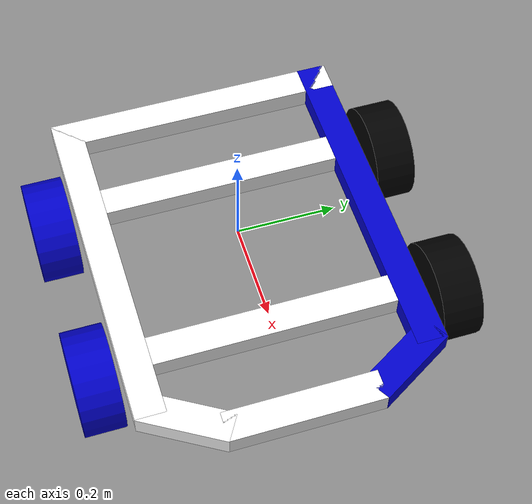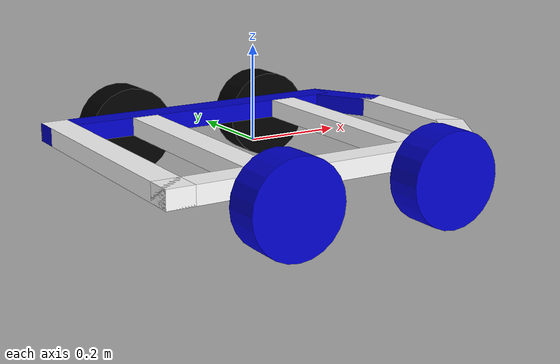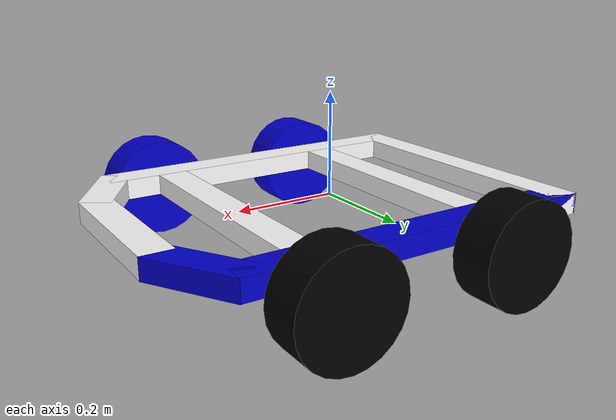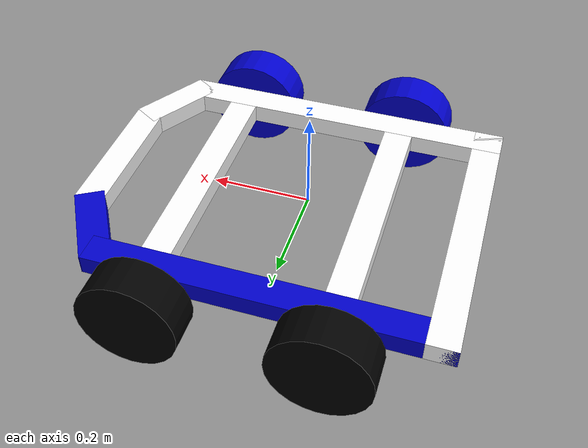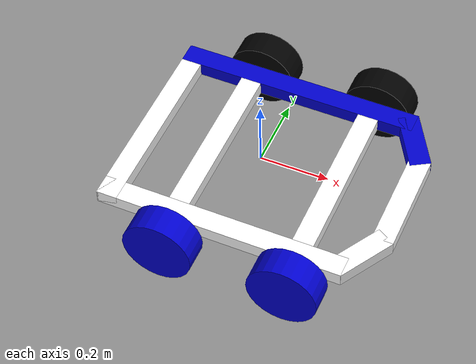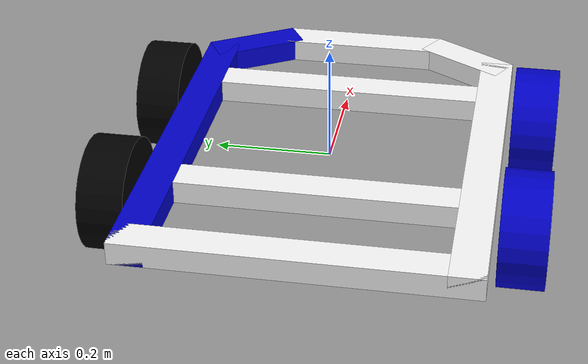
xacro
<?xml version="1.0"?>
<robot xmlns:xacro="http://www.ros.org/wiki/xacro" name="GUELADAN">

<xacro:include filename="inertial_macros.xacro"/>

  <material name="blue">
    <color rgba="0 0 0.8 1"/>
  </material>
  <material name="black">
    <color rgba="0 0 0 1"/>
  </material>
  <material name="white">
    <color rgba="1 1 1 1"/>
  </material>

<link name="base_link"></link>

<joint name="base_join" type="fixed">
    <parent link="base_link"/>
    <child link="chassis_link_back"/>
    <origin rpy="0 0 0" xyz="-0.325 0 0"/>
</joint>

  <link name="chassis_link_back">
    <visual>
      <geometry>
        <box size="0.06 0.6 0.04"/>
      </geometry>
      <origin rpy="0 0 0" xyz="0 0 0"/>
      <material name="white"/>
    </visual>
    <collision>
        <geometry>
            <box size="0.06 0.6 0.04"/>
        </geometry>
        <origin rpy="0 0 0" xyz="0 0 0"/>
    </collision>
    <xacro:inertial_box mass="1.8" x="0.06" y="0.6" z="0.04">
      <origin rpy="0 0 0" xyz="0 0 0"/>
    </xacro:inertial_box>
  </link>

  <joint name="base_link_left_joint" type="fixed">
    <parent link="base_link"/>
    <child link="chassis_link_left"/>
    <origin rpy="0 0 0" xyz="0 -0.27 0"/>
  </joint>

  <joint name="base_link_right_joint" type="fixed">
    <parent link="base_link"/>
    <child link="chassis_link_right"/>
    <origin rpy="0 0 0" xyz="0 0.27 0"/>
  </joint>

  <link name="chassis_link_left">
    <visual>
      <geometry>
        <box size="0.71 0.06 0.04"/>
      </geometry>
      <origin rpy="0 0 0" xyz="0 0 0"/>
      <material name="white"/>
    </visual>

    <collision>
      <geometry>
        <box size="0.71 0.06 0.04"/>
      </geometry>
      <origin rpy="0 0 0" xyz="0 0 0"/>
      <material name="white"/>
    </collision>

    <xacro:inertial_box mass="2.13" x="0.71" y="0.06" z="0.04">
      <origin rpy="0 0 0" xyz="0 0 0"/>
    </xacro:inertial_box>
  </link>

  <link name="chassis_link_right">
    <visual>
      <geometry>
        <box size="0.71 0.06 0.04"/>
      </geometry>
      <origin rpy="0 0 0" xyz="0 0 0"/>
      <material name="blue"/>
    </visual>

    <collision>
      <geometry>
        <box size="0.71 0.06 0.04"/>
      </geometry>
      <origin rpy="0 0 0" xyz="0 0 0"/>
      <material name="blue"/>
    </collision>

    <xacro:inertial_box mass="2.13" x="0.71" y="0.06" z="0.4">
      <origin rpy="0 0 0" xyz="0 0 0"/>
    </xacro:inertial_box>
  </link>

  <joint name="base_link_left_oblic_joint" type="fixed">
    <parent link="base_link"/>
    <child link="chassis_link_left_oblic"/>
    <origin rpy="0 0 -2.11" xyz="0.375 -0.21 0"/>
  </joint>

  <joint name="base_link_right_oblic_joint" type="fixed">
    <parent link="base_link"/>
    <child link="chassis_link_right_oblic"/>
    <origin rpy="0 0 2.11" xyz="0.375 0.21 0"/>
  </joint>

  <joint name="base_link_front_joint" type="fixed">
    <parent link="base_link"/>
    <child link="chassis_link_front"/>
    <origin rpy="0 0 0" xyz="0.415 0 0"/>
  </joint>

  <joint name="chassis_link_2_joint" type="fixed">
    <parent link="base_link"/>
    <child link="chassis_link_2"/>
    <origin rpy="0 0 0" xyz="0.2254 0 0"/>
  </joint>

  <joint name="chassis_link_1_joint" type="fixed">
    <parent link="base_link"/>
    <child link="chassis_link_1"/>
    <origin rpy="0 0 0" xyz="-0.1346 0 0"/>
  </joint>

  <link name="chassis_link_right_oblic">
    <visual>
      <geometry>
        <box size="0.175 0.06 0.04"/>
      </geometry>
      <origin rpy="0 0 0" xyz="0 0 0"/>
      <material name="blue"/>
    </visual>

    <collision>
      <geometry>
        <box size="0.175 0.06 0.04"/>
      </geometry>
      <origin rpy="0 0 0" xyz="0 0 0"/>
      <material name="blue"/>
    </collision>

    <xacro:inertial_box mass="0.525" x="0.175" y="0.06" z="0.04">
      <origin rpy="0 0 0" xyz="0 0 0"/>
    </xacro:inertial_box>
  </link>

  <link name="chassis_link_left_oblic">
    <visual>
      <geometry>
        <box size="0.175 0.06 0.04"/>
      </geometry>
      <origin rpy="0 0 0" xyz="0 0 0"/>
      <material name="white"/>
    </visual>

    <collision>
      <geometry>
        <box size="0.175 0.06 0.04"/>
      </geometry>
      <origin rpy="0 0 0" xyz="0 0 0"/>
      <material name="white"/>
    </collision>

    <xacro:inertial_box mass="0.525" x="0.175" y="0.06" z="0.4">
      <origin rpy="0 0 0" xyz="0 0 0"/>
    </xacro:inertial_box>
  </link>

  <link name="chassis_link_front">
    <visual>
      <geometry>
        <box size="0.06 0.3 0.04"/>
      </geometry>
      <origin rpy="0 0 0" xyz="0 0 0"/>
      <material name="white"/>
    </visual>

    <collision>
      <geometry>
        <box size="0.06 0.3 0.04"/>
      </geometry>
      <origin rpy="0 0 0" xyz="0 0 0"/>
      <material name="white"/>
    </collision>

    <xacro:inertial_box mass="0.9" x="0.06" y="0.3" z="0.04">
      <origin rpy="0 0 0" xyz="0 0 0"/>
    </xacro:inertial_box>
  </link>

  <link name="chassis_link_1">
    <visual>
      <geometry>
        <box size="0.06 0.48 0.04"/>
      </geometry>
      <origin rpy="0 0 0" xyz="0 0 0"/>
      <material name="white"/>
    </visual>

    <collision>
      <geometry>
        <box size="0.06 0.48 0.04"/>
      </geometry>
      <origin rpy="0 0 0" xyz="0 0 0"/>
      <material name="white"/>
    </collision>

     <xacro:inertial_box mass="0.9" x="0.06" y="0.3" z="0.04">
      <origin rpy="0 0 0" xyz="0 0 0"/>
    </xacro:inertial_box>
  </link>

  <link name="chassis_link_2">
    <visual>
      <geometry>
        <box size="0.06 0.48 0.04"/>
      </geometry>
      <origin rpy="0 0 0" xyz="0 0 0"/>
      <material name="white"/>
    </visual>

    <collision>
      <geometry>
        <box size="0.06 0.48 0.04"/>
      </geometry>
      <origin rpy="0 0 0" xyz="0 0 0"/>
      <material name="white"/>
    </collision>

     <xacro:inertial_box mass="0.9" x="0.06" y="0.3" z="0.04">
      <origin rpy="0 0 0" xyz="0 0 0"/>
    </xacro:inertial_box>
  </link>

    <joint name="front_left_wheel_joint" type="continuous">
        <parent link="chassis_link_2"/>
        <child link="front_left_wheel"/>
        <origin rpy="-1.57 0 0" xyz="0 -0.35 -0.03"/>
        <axis xyz="0 0 1"/>
    </joint>

    <transmission name="front_left_wheel_trans">
      <type>transmission_interface/SimpleTransmission</type>
      <actuator name="front_left_wheel_motor">
        <mechanicalReduction>1</mechanicalReduction>
      </actuator>
      <joint name="front_left_wheel_joint">
        <hardwareInterface>hardware_interface/VelocityJointInterface</hardwareInterface>
      </joint>
    </transmission>

    <joint name="back_left_wheel_joint" type="continuous">
        <parent link="chassis_link_1"/>
        <child link="back_left_wheel"/>
        <origin rpy="-1.57 0 0" xyz="0 -0.35 -0.03"/>
        <axis xyz="0 0 1"/>
    </joint>
    <transmission name="back_left_wheel_trans">
      <type>transmission_interface/SimpleTransmission</type>
      <actuator name="back_left_wheel_motor">
        <mechanicalReduction>1</mechanicalReduction>
      </actuator>
      <joint name="back_left_wheel_joint">
        <hardwareInterface>hardware_interface/VelocityJointInterface</hardwareInterface>
      </joint>
    </transmission>

    <joint name="front_right_wheel_joint" type="continuous">
        <parent link="chassis_link_2"/>
        <child link="front_right_wheel"/>
        <origin rpy="1.57 0 0" xyz="0 0.35 -0.03"/>
        <axis xyz="0 0 1"/>
    </joint>
    <transmission name="front_right_wheel_trans">
      <type>transmission_interface/SimpleTransmission</type>
      <actuator name="front_right_wheel_motor">
        <mechanicalReduction>1</mechanicalReduction>
      </actuator>
      <joint name="front_right_wheel_joint">
        <hardwareInterface>hardware_interface/VelocityJointInterface</hardwareInterface>
      </joint>
    </transmission>

    <joint name="back_right_wheel_joint" type="continuous">
        <parent link="chassis_link_1"/>
        <child link="back_right_wheel"/>
        <origin rpy="1.57 0 0" xyz="0 0.35 -0.03"/>
        <axis xyz="0 0 1"/>
    </joint>
    <transmission name="back_right_wheel_trans">
      <type>transmission_interface/SimpleTransmission</type>
      <actuator name="back_right_wheel_motor">
        <mechanicalReduction>1</mechanicalReduction>
      </actuator>
      <joint name="back_right_wheel_joint">
        <hardwareInterface>hardware_interface/VelocityJointInterface</hardwareInterface>
      </joint>
    </transmission>

    <link name="back_right_wheel">
        <visual>
            <geometry>
                <cylinder length="0.08" radius="0.1"/>
            </geometry>
            <origin rpy="0 0 0" xyz="0 0 0"/>
            <material name="black"/>
        </visual>

        <collision>
            <geometry>
                <cylinder length="0.08" radius="0.1"/>
            </geometry>
            <origin rpy="0 0 0" xyz="0 0 0"/>
            <material name="black"/>
        </collision>

        <xacro:inertial_cylinder mass="0.5" length="0.08" radius="0.01">
            <origin xyz="0 0 0" rpy="0 0 0"/>
        </xacro:inertial_cylinder>
    </link>

    <link name="front_right_wheel">
        <visual>
            <geometry>
                <cylinder length="0.08" radius="0.1"/>
            </geometry>
            <origin rpy="0 0 0" xyz="0 0 0"/>
            <material name="black"/>
        </visual>
        <collision>
            <geometry>
                <cylinder length="0.08" radius="0.1"/>
            </geometry>
            <origin rpy="0 0 0" xyz="0 0 0"/>
            <material name="black"/>
        </collision>
        <xacro:inertial_cylinder mass="0.5" length="0.08" radius="0.01">
            <origin xyz="0 0 0" rpy="0 0 0"/>
        </xacro:inertial_cylinder>
    </link>

    <link name="back_left_wheel">
        <visual>
            <geometry>
                <cylinder length="0.08" radius="0.1"/>
            </geometry>
            <origin rpy="0 0 0" xyz="0 0 0"/>
            <material name="blue"/>
        </visual>
        <collision>
            <geometry>
                <cylinder length="0.08" radius="0.1"/>
            </geometry>
            <origin rpy="0 0 0" xyz="0 0 0"/>
            <material name="blue"/>
        </collision>
        <xacro:inertial_cylinder mass="0.5" length="0.08" radius="0.01">
            <origin xyz="0 0 0" rpy="0 0 0"/>
        </xacro:inertial_cylinder>
    </link>

    <link name="front_left_wheel">
        <visual>
            <geometry>
            <cylinder length="0.08" radius="0.1"/>
            </geometry>
            <origin rpy="0 0 0" xyz="0 0 0"/>
            <material name="blue"/>
        </visual>
        <collision>
            <geometry>
            <cylinder length="0.08" radius="0.1"/>
            </geometry>
            <origin rpy="0 0 0" xyz="0 0 0"/>
            <material name="blue"/>
        </collision>
        <xacro:inertial_cylinder mass="0.5" length="0.08" radius="0.01">
            <origin xyz="0 0 0" rpy="0 0 0"/>
        </xacro:inertial_cylinder>
    </link>

  <gazebo>
    <plugin name="gazebo_ros_control" filename="libgazebo_ros_control.so">
      <robotNamespace>/</robotNamespace>
    </plugin>
  </gazebo>

  <gazebo reference="back_right_wheel">
      <mu1 value="200.0"/>
      <mu2 value="100.0"/>
      <kp value="10000000.0" />
      <kd value="1.0" />
      <material>Gazebo/Grey</material>
  </gazebo>
  <gazebo reference="front_right_wheel">
      <mu1 value="200.0"/>
      <mu2 value="100.0"/>
      <kp value="10000000.0" />
      <kd value="1.0" />
      <material>Gazebo/Grey</material>
  </gazebo>
  <gazebo reference="front_left_wheel">
      <mu1 value="200.0"/>
      <mu2 value="100.0"/>
      <kp value="10000000.0" />
      <kd value="1.0" />
      <material>Gazebo/Grey</material>
  </gazebo>
  <gazebo reference="back_left_wheel">
      <mu1 value="200.0"/>
      <mu2 value="100.0"/>
      <kp value="10000000.0" />
      <kd value="1.0" />
      <material>Gazebo/Grey</material>
  </gazebo>

</robot>
